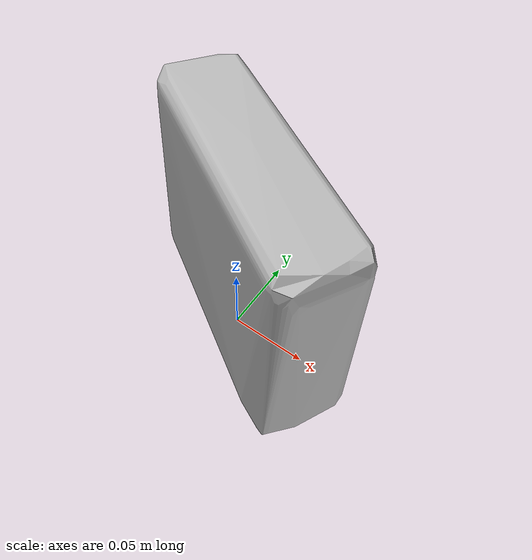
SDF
<?xml version='1.0'?>
<sdf version="1.4">
  <model name="nutrigrain_toffee_crunch_chocolatey_toffee">
    <static>false</static>
    <link name="link">
      <inertial>
        <pose>0.002838455515724214 0.010306407949060991 0.07530973566668951 -1.5395674320390342 0.02642264710556051 1.0331667025953792</pose>
        <mass>0.13185210421249788</mass>
        <inertia>
          <ixx>0.0005228178483414216</ixx>
          <ixy>3.732053580893918e-20</ixy>
          <ixz>-7.84019879240965e-20</ixz>
          <iyy>0.0003347684044486122</iyy>
          <iyz>5.188722171243652e-21</iyz>
          <izz>0.0002543441484584226</izz>
        </inertia>
      </inertial>
      <collision name="collision">
        <geometry>
          <mesh>
            <!-- Use a downsampled mesh for collisions -->
            <uri>model:///nutrigrain_toffee_crunch_chocolatey_toffee/nutrigrain_toffee_crunch_chocolatey_toffee_250_collision.obj</uri>
	        </mesh>
        </geometry>
        <surface>
      </surface>
      </collision>
      <visual name="visual">
        <geometry>
          <mesh>
            <uri>model:///nutrigrain_toffee_crunch_chocolatey_toffee/optimized_tsdf_texture_mapped_mesh.obj</uri>
	        </mesh>
        </geometry>
        <material>
          <script>
            <uri>model:///nutrigrain_toffee_crunch_chocolatey_toffee/nutrigrain_toffee_crunch_chocolatey_toffee.material</uri>
            <name>nutrigrain_toffee_crunch_chocolatey_toffee</name>
          </script>
        </material>
      </visual>
    </link>
  </model>
</sdf>
